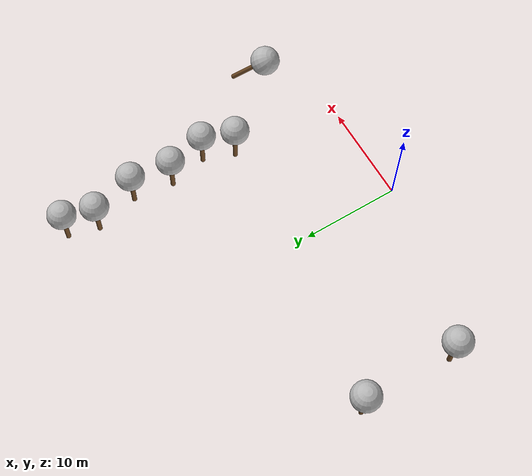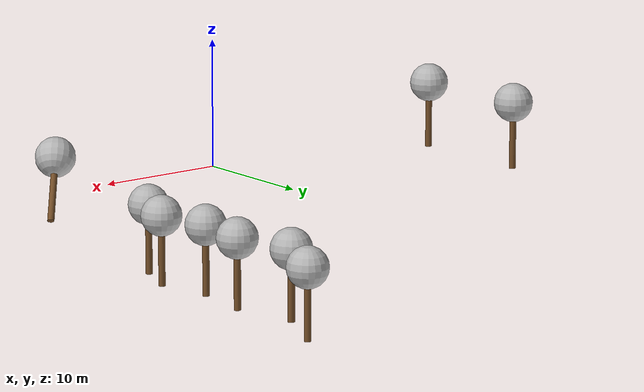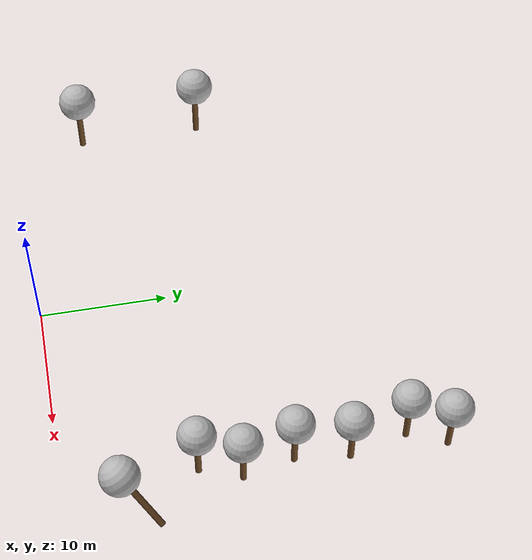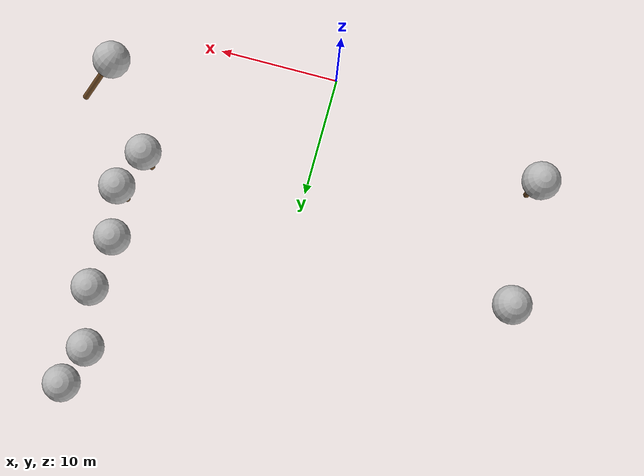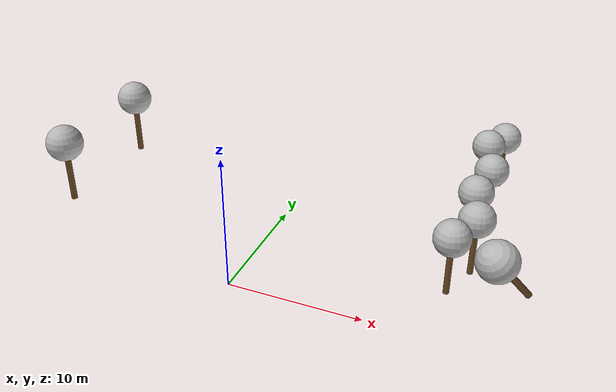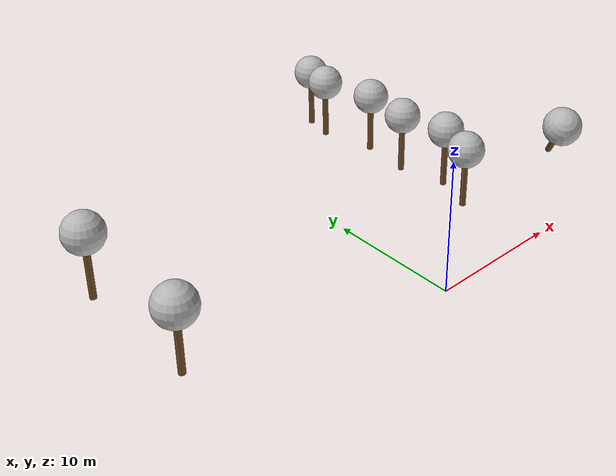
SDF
<sdf version="1.7">
 <world name="default">
  <model name="tree_simple_0_clone_0_clone_clone_4_clone">
   <static>1</static>
   <link name="link">
    <pose>0 0 0.1 0 -0 0</pose>
    <inertial>
     <mass>666</mass>
     <inertia>
      <ixx>0.0861167</ixx>
      <ixy>0</ixy>
      <ixz>0</ixz>
      <iyy>0.0861167</iyy>
      <iyz>0</iyz>
      <izz>0.0861167</izz>
     </inertia>
    </inertial>
    <collision name="collision_trunk">
     <pose>0 0 2 0 -0 0</pose>
     <geometry><cylinder><radius>0.25</radius><length>4</length></cylinder></geometry>
     <surface>
      <contact>
       <poissons_ratio>0.347</poissons_ratio>
       <elastic_modulus>8.8e+09</elastic_modulus>
       <ode><kp>100000</kp><kd>100</kd><max_vel>100</max_vel><min_depth>0.001</min_depth></ode>
      </contact>
      <friction>
       <torsional>
        <coefficient>1</coefficient>
        <use_patch_radius>0</use_patch_radius>
        <surface_radius>0.01</surface_radius>
       </torsional>
      </friction>
     </surface>
    </collision>
    <collision name="collision_treetop">
     <pose>0 0 5.2 0 -0 0</pose>
     <geometry><sphere><radius>1.5</radius></sphere></geometry>
     <surface>
      <contact>
       <poissons_ratio>0.347</poissons_ratio>
       <elastic_modulus>8.8e+09</elastic_modulus>
       <ode><kp>100000</kp><kd>100</kd><max_vel>100</max_vel><min_depth>0.001</min_depth></ode>
      </contact>
      <friction>
       <torsional>
        <coefficient>1</coefficient>
        <use_patch_radius>0</use_patch_radius>
        <surface_radius>0.01</surface_radius>
       </torsional>
      </friction>
     </surface>
    </collision>
    <visual name="trunk">
     <pose>0 0 2 0 -0 0</pose>
     <geometry><cylinder><radius>0.25</radius><length>4</length></cylinder></geometry>
     <material>
      <script>
       <uri>model://tree_simple/scripts</uri>
       <uri>model://tree_simple/materials/textures</uri>
       <name>TreeSimple/Trunk</name>
      </script>
     </material>
    </visual>
    <visual name="treetop">
     <pose>0 0 5.2 0 -0 0</pose>
     <geometry><sphere><radius>1.5</radius></sphere></geometry>
     <material>
      <script>
       <uri>model://tree_simple/scripts</uri>
       <uri>model://tree_simple/materials/textures</uri>
       <name>TreeSimple/Treetop</name>
      </script>
     </material>
    </visual>
   </link>
   <pose>-17.55 15.2092 0 0 -0 0</pose>
  </model>
  <model name="tree_simple_0_clone_0_clone_clone_4_clone_0">
   <static>1</static>
   <link name="link">
    <pose>0 0 0.1 0 -0 0</pose>
    <inertial>
     <mass>666</mass>
     <inertia>
      <ixx>0.0861167</ixx>
      <ixy>0</ixy>
      <ixz>0</ixz>
      <iyy>0.0861167</iyy>
      <iyz>0</iyz>
      <izz>0.0861167</izz>
     </inertia>
    </inertial>
    <collision name="collision_trunk">
     <pose>0 0 2 0 -0 0</pose>
     <geometry><cylinder><radius>0.25</radius><length>4</length></cylinder></geometry>
     <surface>
      <contact>
       <poissons_ratio>0.347</poissons_ratio>
       <elastic_modulus>8.8e+09</elastic_modulus>
       <ode><kp>100000</kp><kd>100</kd><max_vel>100</max_vel><min_depth>0.001</min_depth></ode>
      </contact>
      <friction>
       <torsional>
        <coefficient>1</coefficient>
        <use_patch_radius>0</use_patch_radius>
        <surface_radius>0.01</surface_radius>
       </torsional>
      </friction>
     </surface>
    </collision>
    <collision name="collision_treetop">
     <pose>0 0 5.2 0 -0 0</pose>
     <geometry><sphere><radius>1.5</radius></sphere></geometry>
     <surface>
      <contact>
       <poissons_ratio>0.347</poissons_ratio>
       <elastic_modulus>8.8e+09</elastic_modulus>
       <ode><kp>100000</kp><kd>100</kd><max_vel>100</max_vel><min_depth>0.001</min_depth></ode>
      </contact>
      <friction>
       <torsional>
        <coefficient>1</coefficient>
        <use_patch_radius>0</use_patch_radius>
        <surface_radius>0.01</surface_radius>
       </torsional>
      </friction>
     </surface>
    </collision>
    <visual name="trunk">
     <pose>0 0 2 0 -0 0</pose>
     <geometry><cylinder><radius>0.25</radius><length>4</length></cylinder></geometry>
     <material>
      <script>
       <uri>model://tree_simple/scripts</uri>
       <uri>model://tree_simple/materials/textures</uri>
       <name>TreeSimple/Trunk</name>
      </script>
     </material>
    </visual>
    <visual name="treetop">
     <pose>0 0 5.2 0 -0 0</pose>
     <geometry><sphere><radius>1.5</radius></sphere></geometry>
     <material>
      <script>
       <uri>model://tree_simple/scripts</uri>
       <uri>model://tree_simple/materials/textures</uri>
       <name>TreeSimple/Treetop</name>
      </script>
     </material>
    </visual>
   </link>
   <pose>-17.5383 5.28827 0 0 -0 0</pose>
  </model>
  <model name="tree_simple_0_clone_0_clone_clone_1_clone">
   <static>1</static>
   <link name="link">
    <pose>0 0 0.1 0 -0 0</pose>
    <inertial>
     <mass>666</mass>
     <inertia>
      <ixx>0.0861167</ixx>
      <ixy>0</ixy>
      <ixz>0</ixz>
      <iyy>0.0861167</iyy>
      <iyz>0</iyz>
      <izz>0.0861167</izz>
     </inertia>
    </inertial>
    <collision name="collision_trunk">
     <pose>0 0 2 0 -0 0</pose>
     <geometry><cylinder><radius>0.25</radius><length>4</length></cylinder></geometry>
     <surface>
      <contact>
       <poissons_ratio>0.347</poissons_ratio>
       <elastic_modulus>8.8e+09</elastic_modulus>
       <ode><kp>100000</kp><kd>100</kd><max_vel>100</max_vel><min_depth>0.001</min_depth></ode>
      </contact>
      <friction>
       <torsional>
        <coefficient>1</coefficient>
        <use_patch_radius>0</use_patch_radius>
        <surface_radius>0.01</surface_radius>
       </torsional>
      </friction>
     </surface>
    </collision>
    <collision name="collision_treetop">
     <pose>0 0 5.2 0 -0 0</pose>
     <geometry><sphere><radius>1.5</radius></sphere></geometry>
     <surface>
      <contact>
       <poissons_ratio>0.347</poissons_ratio>
       <elastic_modulus>8.8e+09</elastic_modulus>
       <ode><kp>100000</kp><kd>100</kd><max_vel>100</max_vel><min_depth>0.001</min_depth></ode>
      </contact>
      <friction>
       <torsional>
        <coefficient>1</coefficient>
        <use_patch_radius>0</use_patch_radius>
        <surface_radius>0.01</surface_radius>
       </torsional>
      </friction>
     </surface>
    </collision>
    <visual name="trunk">
     <pose>0 0 2 0 -0 0</pose>
     <geometry><cylinder><radius>0.25</radius><length>4</length></cylinder></geometry>
     <material>
      <script>
       <uri>model://tree_simple/scripts</uri>
       <uri>model://tree_simple/materials/textures</uri>
       <name>TreeSimple/Trunk</name>
      </script>
     </material>
    </visual>
    <visual name="treetop">
     <pose>0 0 5.2 0 -0 0</pose>
     <geometry><sphere><radius>1.5</radius></sphere></geometry>
     <material>
      <script>
       <uri>model://tree_simple/scripts</uri>
       <uri>model://tree_simple/materials/textures</uri>
       <name>TreeSimple/Treetop</name>
      </script>
     </material>
    </visual>
   </link>
   <pose>13.3682 26.7498 -4.27467 0 -0 0</pose>
  </model>
  <model name="tree_simple_0_clone_0_clone_clone_1_clone_clone">
   <static>1</static>
   <link name="link">
    <pose>0 0 0.1 0 -0 0</pose>
    <inertial>
     <mass>666</mass>
     <inertia>
      <ixx>0.0861167</ixx>
      <ixy>0</ixy>
      <ixz>0</ixz>
      <iyy>0.0861167</iyy>
      <iyz>0</iyz>
      <izz>0.0861167</izz>
     </inertia>
    </inertial>
    <collision name="collision_trunk">
     <pose>0 0 2 0 -0 0</pose>
     <geometry><cylinder><radius>0.25</radius><length>4</length></cylinder></geometry>
     <surface>
      <contact>
       <poissons_ratio>0.347</poissons_ratio>
       <elastic_modulus>8.8e+09</elastic_modulus>
       <ode><kp>100000</kp><kd>100</kd><max_vel>100</max_vel><min_depth>0.001</min_depth></ode>
      </contact>
      <friction>
       <torsional>
        <coefficient>1</coefficient>
        <use_patch_radius>0</use_patch_radius>
        <surface_radius>0.01</surface_radius>
       </torsional>
      </friction>
     </surface>
    </collision>
    <collision name="collision_treetop">
     <pose>0 0 5.2 0 -0 0</pose>
     <geometry><sphere><radius>1.5</radius></sphere></geometry>
     <surface>
      <contact>
       <poissons_ratio>0.347</poissons_ratio>
       <elastic_modulus>8.8e+09</elastic_modulus>
       <ode><kp>100000</kp><kd>100</kd><max_vel>100</max_vel><min_depth>0.001</min_depth></ode>
      </contact>
      <friction>
       <torsional>
        <coefficient>1</coefficient>
        <use_patch_radius>0</use_patch_radius>
        <surface_radius>0.01</surface_radius>
       </torsional>
      </friction>
     </surface>
    </collision>
    <visual name="trunk">
     <pose>0 0 2 0 -0 0</pose>
     <geometry><cylinder><radius>0.25</radius><length>4</length></cylinder></geometry>
     <material>
      <script>
       <uri>model://tree_simple/scripts</uri>
       <uri>model://tree_simple/materials/textures</uri>
       <name>TreeSimple/Trunk</name>
      </script>
     </material>
    </visual>
    <visual name="treetop">
     <pose>0 0 5.2 0 -0 0</pose>
     <geometry><sphere><radius>1.5</radius></sphere></geometry>
     <material>
      <script>
       <uri>model://tree_simple/scripts</uri>
       <uri>model://tree_simple/materials/textures</uri>
       <name>TreeSimple/Treetop</name>
      </script>
     </material>
    </visual>
   </link>
   <pose>14.4464 29.8971 -4.7457 0 -0 0</pose>
  </model>
  <model name="tree_simple_0_clone_0_clone_clone_1_clone_clone_1">
   <static>1</static>
   <link name="link">
    <pose>0 0 0.1 0 -0 0</pose>
    <inertial>
     <mass>666</mass>
     <inertia>
      <ixx>0.0861167</ixx>
      <ixy>0</ixy>
      <ixz>0</ixz>
      <iyy>0.0861167</iyy>
      <iyz>0</iyz>
      <izz>0.0861167</izz>
     </inertia>
    </inertial>
    <collision name="collision_trunk">
     <pose>0 0 2 0 -0 0</pose>
     <geometry><cylinder><radius>0.25</radius><length>4</length></cylinder></geometry>
     <surface>
      <contact>
       <poissons_ratio>0.347</poissons_ratio>
       <elastic_modulus>8.8e+09</elastic_modulus>
       <ode><kp>100000</kp><kd>100</kd><max_vel>100</max_vel><min_depth>0.001</min_depth></ode>
      </contact>
      <friction>
       <torsional>
        <coefficient>1</coefficient>
        <use_patch_radius>0</use_patch_radius>
        <surface_radius>0.01</surface_radius>
       </torsional>
      </friction>
     </surface>
    </collision>
    <collision name="collision_treetop">
     <pose>0 0 5.2 0 -0 0</pose>
     <geometry><sphere><radius>1.5</radius></sphere></geometry>
     <surface>
      <contact>
       <poissons_ratio>0.347</poissons_ratio>
       <elastic_modulus>8.8e+09</elastic_modulus>
       <ode><kp>100000</kp><kd>100</kd><max_vel>100</max_vel><min_depth>0.001</min_depth></ode>
      </contact>
      <friction>
       <torsional>
        <coefficient>1</coefficient>
        <use_patch_radius>0</use_patch_radius>
        <surface_radius>0.01</surface_radius>
       </torsional>
      </friction>
     </surface>
    </collision>
    <visual name="trunk">
     <pose>0 0 2 0 -0 0</pose>
     <geometry><cylinder><radius>0.25</radius><length>4</length></cylinder></geometry>
     <material>
      <script>
       <uri>model://tree_simple/scripts</uri>
       <uri>model://tree_simple/materials/textures</uri>
       <name>TreeSimple/Trunk</name>
      </script>
     </material>
    </visual>
    <visual name="treetop">
     <pose>0 0 5.2 0 -0 0</pose>
     <geometry><sphere><radius>1.5</radius></sphere></geometry>
     <material>
      <script>
       <uri>model://tree_simple/scripts</uri>
       <uri>model://tree_simple/materials/textures</uri>
       <name>TreeSimple/Treetop</name>
      </script>
     </material>
    </visual>
   </link>
   <pose>14.4798 22.0908 -4.27467 0 -0 0</pose>
  </model>
  <model name="tree_simple_0_clone_0_clone_clone_1_clone_clone_2">
   <static>1</static>
   <link name="link">
    <pose>0 0 0.1 0 -0 0</pose>
    <inertial>
     <mass>666</mass>
     <inertia>
      <ixx>0.0861167</ixx>
      <ixy>0</ixy>
      <ixz>0</ixz>
      <iyy>0.0861167</iyy>
      <iyz>0</iyz>
      <izz>0.0861167</izz>
     </inertia>
    </inertial>
    <collision name="collision_trunk">
     <pose>0 0 2 0 -0 0</pose>
     <geometry><cylinder><radius>0.25</radius><length>4</length></cylinder></geometry>
     <surface>
      <contact>
       <poissons_ratio>0.347</poissons_ratio>
       <elastic_modulus>8.8e+09</elastic_modulus>
       <ode><kp>100000</kp><kd>100</kd><max_vel>100</max_vel><min_depth>0.001</min_depth></ode>
      </contact>
      <friction>
       <torsional>
        <coefficient>1</coefficient>
        <use_patch_radius>0</use_patch_radius>
        <surface_radius>0.01</surface_radius>
       </torsional>
      </friction>
     </surface>
    </collision>
    <collision name="collision_treetop">
     <pose>0 0 5.2 0 -0 0</pose>
     <geometry><sphere><radius>1.5</radius></sphere></geometry>
     <surface>
      <contact>
       <poissons_ratio>0.347</poissons_ratio>
       <elastic_modulus>8.8e+09</elastic_modulus>
       <ode><kp>100000</kp><kd>100</kd><max_vel>100</max_vel><min_depth>0.001</min_depth></ode>
      </contact>
      <friction>
       <torsional>
        <coefficient>1</coefficient>
        <use_patch_radius>0</use_patch_radius>
        <surface_radius>0.01</surface_radius>
       </torsional>
      </friction>
     </surface>
    </collision>
    <visual name="trunk">
     <pose>0 0 2 0 -0 0</pose>
     <geometry><cylinder><radius>0.25</radius><length>4</length></cylinder></geometry>
     <material>
      <script>
       <uri>model://tree_simple/scripts</uri>
       <uri>model://tree_simple/materials/textures</uri>
       <name>TreeSimple/Trunk</name>
      </script>
     </material>
    </visual>
    <visual name="treetop">
     <pose>0 0 5.2 0 -0 0</pose>
     <geometry><sphere><radius>1.5</radius></sphere></geometry>
     <material>
      <script>
       <uri>model://tree_simple/scripts</uri>
       <uri>model://tree_simple/materials/textures</uri>
       <name>TreeSimple/Treetop</name>
      </script>
     </material>
    </visual>
   </link>
   <pose>13.9771 17.7579 -4.27467 0 -0 0</pose>
  </model>
  <model name="tree_simple_0_clone_0_clone_clone_1_clone_clone_4">
   <static>1</static>
   <link name="link">
    <pose>0 0 0.1 0 -0 0</pose>
    <inertial>
     <mass>666</mass>
     <inertia>
      <ixx>0.0861167</ixx>
      <ixy>0</ixy>
      <ixz>0</ixz>
      <iyy>0.0861167</iyy>
      <iyz>0</iyz>
      <izz>0.0861167</izz>
     </inertia>
    </inertial>
    <collision name="collision_trunk">
     <pose>0 0 2 0 -0 0</pose>
     <geometry><cylinder><radius>0.25</radius><length>4</length></cylinder></geometry>
     <surface>
      <contact>
       <poissons_ratio>0.347</poissons_ratio>
       <elastic_modulus>8.8e+09</elastic_modulus>
       <ode><kp>100000</kp><kd>100</kd><max_vel>100</max_vel><min_depth>0.001</min_depth></ode>
      </contact>
      <friction>
       <torsional>
        <coefficient>1</coefficient>
        <use_patch_radius>0</use_patch_radius>
        <surface_radius>0.01</surface_radius>
       </torsional>
      </friction>
     </surface>
    </collision>
    <collision name="collision_treetop">
     <pose>0 0 5.2 0 -0 0</pose>
     <geometry><sphere><radius>1.5</radius></sphere></geometry>
     <surface>
      <contact>
       <poissons_ratio>0.347</poissons_ratio>
       <elastic_modulus>8.8e+09</elastic_modulus>
       <ode><kp>100000</kp><kd>100</kd><max_vel>100</max_vel><min_depth>0.001</min_depth></ode>
      </contact>
      <friction>
       <torsional>
        <coefficient>1</coefficient>
        <use_patch_radius>0</use_patch_radius>
        <surface_radius>0.01</surface_radius>
       </torsional>
      </friction>
     </surface>
    </collision>
    <visual name="trunk">
     <pose>0 0 2 0 -0 0</pose>
     <geometry><cylinder><radius>0.25</radius><length>4</length></cylinder></geometry>
     <material>
      <script>
       <uri>model://tree_simple/scripts</uri>
       <uri>model://tree_simple/materials/textures</uri>
       <name>TreeSimple/Trunk</name>
      </script>
     </material>
    </visual>
    <visual name="treetop">
     <pose>0 0 5.2 0 -0 0</pose>
     <geometry><sphere><radius>1.5</radius></sphere></geometry>
     <material>
      <script>
       <uri>model://tree_simple/scripts</uri>
       <uri>model://tree_simple/materials/textures</uri>
       <name>TreeSimple/Treetop</name>
      </script>
     </material>
    </visual>
   </link>
   <pose>14.8506 13.6404 -4.27467 0 -0 0</pose>
  </model>
  <model name="tree_simple_0_clone_0_clone_clone_1_clone_clone_5">
   <static>1</static>
   <link name="link">
    <pose>0 0 0.1 0 -0 0</pose>
    <inertial>
     <mass>666</mass>
     <inertia>
      <ixx>0.0861167</ixx>
      <ixy>0</ixy>
      <ixz>0</ixz>
      <iyy>0.0861167</iyy>
      <iyz>0</iyz>
      <izz>0.0861167</izz>
     </inertia>
    </inertial>
    <collision name="collision_trunk">
     <pose>0 0 2 0 -0 0</pose>
     <geometry><cylinder><radius>0.25</radius><length>4</length></cylinder></geometry>
     <surface>
      <contact>
       <poissons_ratio>0.347</poissons_ratio>
       <elastic_modulus>8.8e+09</elastic_modulus>
       <ode><kp>100000</kp><kd>100</kd><max_vel>100</max_vel><min_depth>0.001</min_depth></ode>
      </contact>
      <friction>
       <torsional>
        <coefficient>1</coefficient>
        <use_patch_radius>0</use_patch_radius>
        <surface_radius>0.01</surface_radius>
       </torsional>
      </friction>
     </surface>
    </collision>
    <collision name="collision_treetop">
     <pose>0 0 5.2 0 -0 0</pose>
     <geometry><sphere><radius>1.5</radius></sphere></geometry>
     <surface>
      <contact>
       <poissons_ratio>0.347</poissons_ratio>
       <elastic_modulus>8.8e+09</elastic_modulus>
       <ode><kp>100000</kp><kd>100</kd><max_vel>100</max_vel><min_depth>0.001</min_depth></ode>
      </contact>
      <friction>
       <torsional>
        <coefficient>1</coefficient>
        <use_patch_radius>0</use_patch_radius>
        <surface_radius>0.01</surface_radius>
       </torsional>
      </friction>
     </surface>
    </collision>
    <visual name="trunk">
     <pose>0 0 2 0 -0 0</pose>
     <geometry><cylinder><radius>0.25</radius><length>4</length></cylinder></geometry>
     <material>
      <script>
       <uri>model://tree_simple/scripts</uri>
       <uri>model://tree_simple/materials/textures</uri>
       <name>TreeSimple/Trunk</name>
      </script>
     </material>
    </visual>
    <visual name="treetop">
     <pose>0 0 5.2 0 -0 0</pose>
     <geometry><sphere><radius>1.5</radius></sphere></geometry>
     <material>
      <script>
       <uri>model://tree_simple/scripts</uri>
       <uri>model://tree_simple/materials/textures</uri>
       <name>TreeSimple/Treetop</name>
      </script>
     </material>
    </visual>
   </link>
   <pose>13.6256 10.3609 -4.27467 0 -0 0</pose>
  </model>
  <model name="tree_simple_0_clone_0_clone_clone_4_clone_1">
   <static>1</static>
   <link name="link">
    <pose>0 0 0.1 0 -0 0</pose>
    <inertial>
     <mass>666</mass>
     <inertia>
      <ixx>0.0861167</ixx>
      <ixy>0</ixy>
      <ixz>0</ixz>
      <iyy>0.0861167</iyy>
      <iyz>0</iyz>
      <izz>0.0861167</izz>
     </inertia>
    </inertial>
    <collision name="collision_trunk">
     <pose>0 0 2 0 -0 0</pose>
     <geometry><cylinder><radius>0.25</radius><length>4</length></cylinder></geometry>
     <surface>
      <contact>
       <poissons_ratio>0.347</poissons_ratio>
       <elastic_modulus>8.8e+09</elastic_modulus>
       <ode><kp>100000</kp><kd>100</kd><max_vel>100</max_vel><min_depth>0.001</min_depth></ode>
      </contact>
      <friction>
       <torsional>
        <coefficient>1</coefficient>
        <use_patch_radius>0</use_patch_radius>
        <surface_radius>0.01</surface_radius>
       </torsional>
      </friction>
     </surface>
    </collision>
    <collision name="collision_treetop">
     <pose>0 0 5.2 0 -0 0</pose>
     <geometry><sphere><radius>1.5</radius></sphere></geometry>
     <surface>
      <contact>
       <poissons_ratio>0.347</poissons_ratio>
       <elastic_modulus>8.8e+09</elastic_modulus>
       <ode><kp>100000</kp><kd>100</kd><max_vel>100</max_vel><min_depth>0.001</min_depth></ode>
      </contact>
      <friction>
       <torsional>
        <coefficient>1</coefficient>
        <use_patch_radius>0</use_patch_radius>
        <surface_radius>0.01</surface_radius>
       </torsional>
      </friction>
     </surface>
    </collision>
    <visual name="trunk">
     <pose>0 0 2 0 -0 0</pose>
     <geometry><cylinder><radius>0.25</radius><length>4</length></cylinder></geometry>
     <material>
      <script>
       <uri>model://tree_simple/scripts</uri>
       <uri>model://tree_simple/materials/textures</uri>
       <name>TreeSimple/Trunk</name>
      </script>
     </material>
    </visual>
    <visual name="treetop">
     <pose>0 0 5.2 0 -0 0</pose>
     <geometry><sphere><radius>1.5</radius></sphere></geometry>
     <material>
      <script>
       <uri>model://tree_simple/scripts</uri>
       <uri>model://tree_simple/materials/textures</uri>
       <name>TreeSimple/Treetop</name>
      </script>
     </material>
    </visual>
   </link>
   <pose>19.8831 6.96556 0 0.512405 -0.508067 0</pose>
  </model>
 </world>
</sdf>
